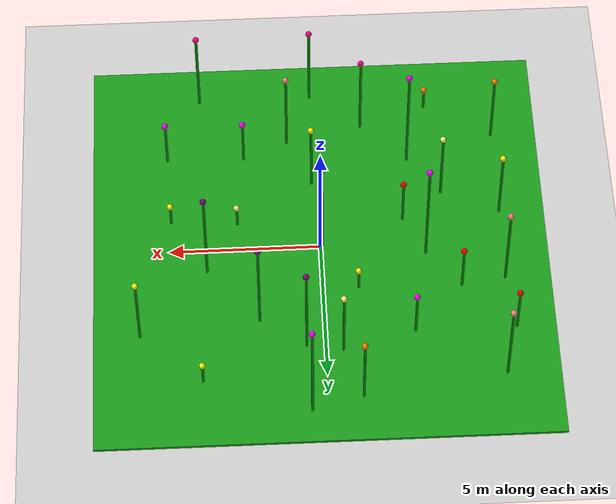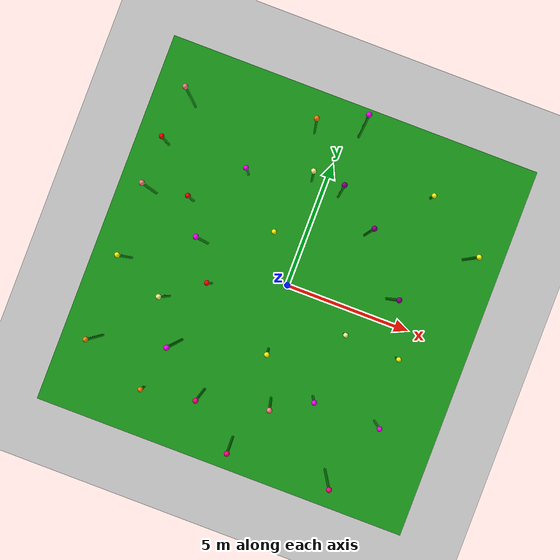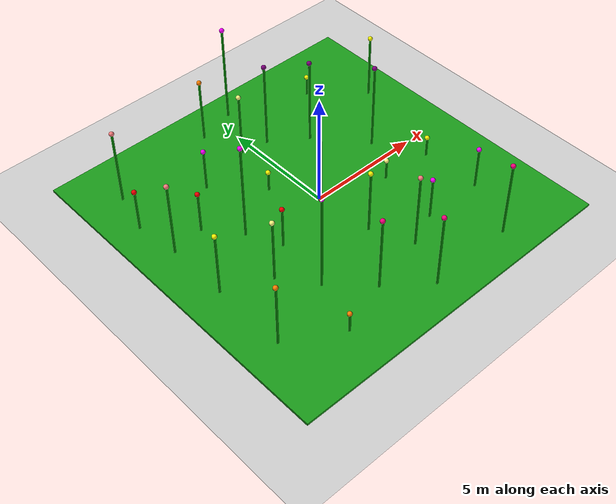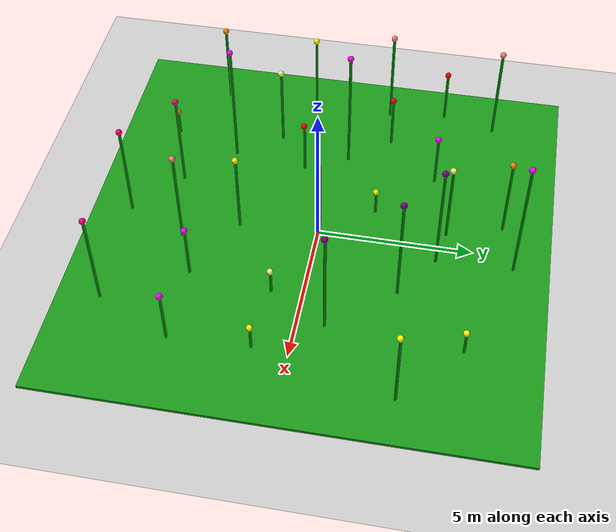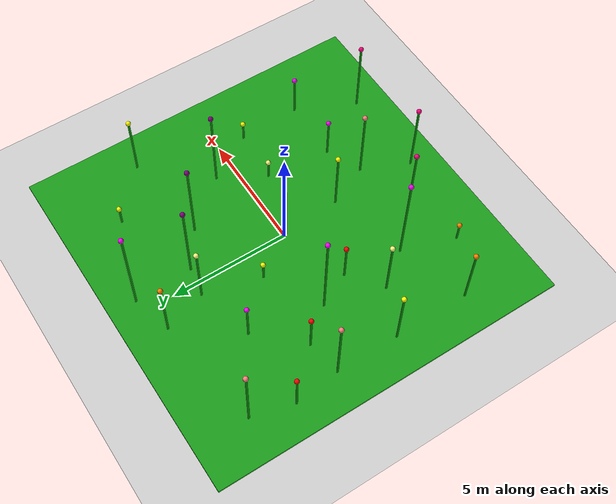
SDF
<sdf version='1.10'>
  <world name='test_world'>
    <physics name='1ms' type='ignored'>
      <max_step_size>0.001</max_step_size>
      <real_time_factor>1</real_time_factor>
      <real_time_update_rate>1000</real_time_update_rate>
    </physics>
    <plugin name='gz::sim::systems::Physics' filename='gz-sim-physics-system'/>
    <plugin name='gz::sim::systems::UserCommands' filename='gz-sim-user-commands-system'/>
    <plugin name='gz::sim::systems::SceneBroadcaster' filename='gz-sim-scene-broadcaster-system'/>
    <plugin name='gz::sim::systems::Contact' filename='gz-sim-contact-system'/>
    <gravity>0 0 -9.8</gravity>
    <magnetic_field>5.5645e-06 2.28758e-05 -4.23884e-05</magnetic_field>
    <atmosphere type='adiabatic'/>
    <scene>
      <ambient>0.4 0.4 0.4 1</ambient>
      <background>0.7 0.7 0.7 1</background>
      <shadows>true</shadows>
    </scene>

    <!-- Ground Plane -->
    <model name='ground_plane'>
      <static>true</static>
      <link name='link'>
        <collision name='collision'>
          <geometry>
            <plane>
              <normal>0 0 1</normal>
              <size>100 100</size>
            </plane>
          </geometry>
          <surface>
            <friction><ode/></friction>
          </surface>
        </collision>
        <visual name='visual'>
          <geometry>
            <plane>
              <normal>0 0 1</normal>
              <size>100 100</size>
            </plane>
          </geometry>
          <material>
            <ambient>0.8 0.8 0.8 1</ambient>
            <diffuse>0.8 0.8 0.8 1</diffuse>
            <specular>0.8 0.8 0.8 1</specular>
          </material>
        </visual>
      </link>
    </model>

    <!-- Grass Patch -->
    <model name="grass_patch">
      <static>true</static>
      <link name="link">
        <visual name="grass_visual">
          <geometry>
            <box>
              <size>15 15 0.1</size>
            </box>
          </geometry>
          <material>
            <ambient>0.1 0.6 0.1 1</ambient>
            <diffuse>0.1 0.6 0.1 1</diffuse>
          </material>
          <pose>0 0 0.05 0 0 0</pose>
        </visual>
        <collision name="grass_collision">
          <geometry>
            <box>
              <size>15 15 0.1</size>
            </box>
          </geometry>
        </collision>
      </link>
    </model>

    <!-- 30 Random Flowers -->

    <model name="flower1">
      <static>true</static>
      <link name="link">
        <visual name="stem_visual"><geometry><cylinder><radius>0.05</radius><length>2.0</length></cylinder></geometry><material><ambient>0 0.5 0 1</ambient><diffuse>0 0.5 0 1</diffuse></material><pose>0 0 1.0 0 0 0</pose></visual>
        <visual name="top_visual"><geometry><sphere><radius>0.1</radius></sphere></geometry><material><ambient>1 0 0 1</ambient><diffuse>1 0 0 1</diffuse></material><pose>0 0 2.0 0 0 0</pose></visual>
      </link>
      <pose>-6.21 3.47 0 0 0 0</pose>
    </model>

    <model name="flower2">
      <static>true</static>
      <link name="link">
        <visual name="stem_visual"><geometry><cylinder><radius>0.05</radius><length>1.0</length></cylinder></geometry><material><ambient>0 0.5 0 1</ambient><diffuse>0 0.5 0 1</diffuse></material><pose>0 0 0.5 0 0 0</pose></visual>
        <visual name="top_visual"><geometry><sphere><radius>0.1</radius></sphere></geometry><material><ambient>1 1 0 1</ambient><diffuse>1 1 0 1</diffuse></material><pose>0 0 1.0 0 0 0</pose></visual>
      </link>
      <pose>4.9199999999999999 -1.1299999999999999 0 0 0 0</pose>
    </model>

    <model name="flower3">
      <static>true</static>
      <link name="link">
        <visual name="stem_visual"><geometry><cylinder><radius>0.05</radius><length>4.5</length></cylinder></geometry><material><ambient>0 0.5 0 1</ambient><diffuse>0 0.5 0 1</diffuse></material><pose>0 0 2.25 0 0 0</pose></visual>
        <visual name="top_visual"><geometry><sphere><radius>0.1</radius></sphere></geometry><material><ambient>1 0 1 1</ambient><diffuse>1 0 1 1</diffuse></material><pose>0 0 4.5 0 0 0</pose></visual>
      </link>
      <pose>0.55000000000000004 6.3399999999999999 0 0 0 0</pose>
    </model>

    <model name="flower4">
      <static>true</static>
      <link name="link">
        <visual name="stem_visual"><geometry><cylinder><radius>0.05</radius><length>1.0</length></cylinder></geometry><material><ambient>0 0.5 0 1</ambient><diffuse>0 0.5 0 1</diffuse></material><pose>0 0 0.5 0 0 0</pose></visual>
        <visual name="top_visual"><geometry><sphere><radius>0.1</radius></sphere></geometry><material><ambient>1 0.5 0 1</ambient><diffuse>1 0.5 0 1</diffuse></material><pose>0 0 1.0 0 0 0</pose></visual>
      </link>
      <pose>-3.78 -5.62 0 0 0 0</pose>
    </model>

    <model name="flower5">
      <static>true</static>
      <link name="link">
        <visual name="stem_visual"><geometry><cylinder><radius>0.05</radius><length>4.0</length></cylinder></geometry><material><ambient>0 0.5 0 1</ambient><diffuse>0 0.5 0 1</diffuse></material><pose>0 0 2.0 0 0 0</pose></visual>
        <visual name="top_visual"><geometry><sphere><radius>0.1</radius></sphere></geometry><material><ambient>0.5 0 0.5 1</ambient><diffuse>0.5 0 0.5 1</diffuse></material><pose>0 0 4.0 0 0 0</pose></visual>
      </link>
      <pose>2.11 2.87 0 0 0 0</pose>
    </model>

    <model name="flower6">
      <static>true</static>
      <link name="link">
        <visual name="stem_visual"><geometry><cylinder><radius>0.05</radius><length>1.0</length></cylinder></geometry><material><ambient>0 0.5 0 1</ambient><diffuse>0 0.5 0 1</diffuse></material><pose>0 0 0.5 0 0 0</pose></visual>
        <visual name="top_visual"><geometry><sphere><radius>0.1</radius></sphere></geometry><material><ambient>1 1 0.5 1</ambient><diffuse>1 1 0.5 1</diffuse></material><pose>0 0 1.0 0 0 0</pose></visual>
      </link>
      <pose>2.7268669605255127 -0.98000001907348633 0 0 0 0</pose>
    </model>

    <model name="flower7">
      <static>true</static>
      <link name="link">
        <visual name="stem_visual"><geometry><cylinder><radius>0.05</radius><length>2.0</length></cylinder></geometry><material><ambient>0 0.5 0 1</ambient><diffuse>0 0.5 0 1</diffuse></material><pose>0 0 1.0 0 0 0</pose></visual>
        <visual name="top_visual"><geometry><sphere><radius>0.1</radius></sphere></geometry><material><ambient>1 0 1 1</ambient><diffuse>1 0 1 1</diffuse></material><pose>0 0 2.0 0 0 0</pose></visual>
      </link>
      <pose>5.0106801986694336 -3.7122397422790527 0 0 0 0</pose>
    </model>

    <model name="flower8">
      <static>true</static>
      <link name="link">
        <visual name="stem_visual"><geometry><cylinder><radius>0.05</radius><length>3.5</length></cylinder></geometry><material><ambient>0 0.5 0 1</ambient><diffuse>0 0.5 0 1</diffuse></material><pose>0 0 1.75 0 0 0</pose></visual>
        <visual name="top_visual"><geometry><sphere><radius>0.1</radius></sphere></geometry><material><ambient>1 0.5 0.5 1</ambient><diffuse>1 0.5 0.5 1</diffuse></material><pose>0 0 3.5 0 0 0</pose></visual>
      </link>
      <pose>-5.76 5.21 0 0 0 0</pose>
    </model>

    <model name="flower9">
      <static>true</static>
      <link name="link">
        <visual name="stem_visual"><geometry><cylinder><radius>0.05</radius><length>3.5</length></cylinder></geometry><material><ambient>0 0.5 0 1</ambient><diffuse>0 0.5 0 1</diffuse></material><pose>0 0 1.75 0 0 0</pose></visual>
        <visual name="top_visual"><geometry><sphere><radius>0.1</radius></sphere></geometry><material><ambient>1 0 0.5 1</ambient><diffuse>1 0 0.5 1</diffuse></material><pose>0 0 3.5 0 0 0</pose></visual>
      </link>
      <pose>3.88 -6.14 0 0 0 0</pose>
    </model>

    <model name="flower10">
      <static>true</static>
      <link name="link">
        <visual name="stem_visual"><geometry><cylinder><radius>0.05</radius><length>1.0</length></cylinder></geometry><material><ambient>0 0.5 0 1</ambient><diffuse>0 0.5 0 1</diffuse></material><pose>0 0 0.5 0 0 0</pose></visual>
        <visual name="top_visual"><geometry><sphere><radius>0.1</radius></sphere></geometry><material><ambient>1 1 0 1</ambient><diffuse>1 1 0 1</diffuse></material><pose>0 0 1.0 0 0 0</pose></visual>
      </link>
      <pose>-1.1677910089492798 1.7102899551391602 0 0 0 0</pose>
    </model>

    <model name="flower11">
      <static>true</static>
      <link name="link">
        <visual name="stem_visual"><geometry><cylinder><radius>0.05</radius><length>2.0</length></cylinder></geometry><material><ambient>0 0.5 0 1</ambient><diffuse>0 0.5 0 1</diffuse></material><pose>0 0 1.0 0 0 0</pose></visual>
        <visual name="top_visual"><geometry><sphere><radius>0.1</radius></sphere></geometry><material><ambient>1 0 0 1</ambient><diffuse>1 0 0 1</diffuse></material><pose>0 0 2.0 0 0 0</pose></visual>
      </link>
      <pose>-2.7699999809265137 -0.95477199554443359 0 0 0 0</pose>
    </model>

    <model name="flower12">
      <static>true</static>
      <link name="link">
        <visual name="stem_visual"><geometry><cylinder><radius>0.05</radius><length>3.0</length></cylinder></geometry><material><ambient>0 0.5 0 1</ambient><diffuse>0 0.5 0 1</diffuse></material><pose>0 0 1.5 0 0 0</pose></visual>
        <visual name="top_visual"><geometry><sphere><radius>0.1</radius></sphere></geometry><material><ambient>1 1 0 1</ambient><diffuse>1 1 0 1</diffuse></material><pose>0 0 3.0 0 0 0</pose></visual>
      </link>
      <pose>0.19871200621128082 -2.5511820316314697 0 0 0 0</pose>
    </model>

    <model name="flower13">
      <static>true</static>
      <link name="link">
        <visual name="stem_visual"><geometry><cylinder><radius>0.05</radius><length>4.5</length></cylinder></geometry><material><ambient>0 0.5 0 1</ambient><diffuse>0 0.5 0 1</diffuse></material><pose>0 0 2.25 0 0 0</pose></visual>
        <visual name="top_visual"><geometry><sphere><radius>0.1</radius></sphere></geometry><material><ambient>1 0 1 1</ambient><diffuse>1 0 1 1</diffuse></material><pose>0 0 4.5 0 0 0</pose></visual>
      </link>
      <pose>-3.0538747310638428 -3.3986799716949463 0 0 0 0</pose>
    </model>

    <model name="flower14">
      <static>true</static>
      <link name="link">
        <visual name="stem_visual"><geometry><cylinder><radius>0.05</radius><length>3.0</length></cylinder></geometry><material><ambient>0 0.5 0 1</ambient><diffuse>0 0.5 0 1</diffuse></material><pose>0 0 1.5 0 0 0</pose></visual>
        <visual name="top_visual"><geometry><sphere><radius>0.1</radius></sphere></geometry><material><ambient>1 0.5 0 1</ambient><diffuse>1 0.5 0 1</diffuse></material><pose>0 0 3.0 0 0 0</pose></visual>
      </link>
      <pose>-5.9881601333618164 -4.3124814033508301 0 0 0 0</pose>
    </model>

    <model name="flower15">
      <static>true</static>
      <link name="link">
        <visual name="stem_visual"><geometry><cylinder><radius>0.05</radius><length>4.0</length></cylinder></geometry><material><ambient>0 0.5 0 1</ambient><diffuse>0 0.5 0 1</diffuse></material><pose>0 0 2.0 0 0 0</pose></visual>
        <visual name="top_visual"><geometry><sphere><radius>0.1</radius></sphere></geometry><material><ambient>0.5 0 0.5 1</ambient><diffuse>0.5 0 0.5 1</diffuse></material><pose>0 0 4.0 0 0 0</pose></visual>
      </link>
      <pose>3.77 0.88 0 0 0 0</pose>
    </model>

    <model name="flower16">
      <static>true</static>
      <link name="link">
        <visual name="stem_visual"><geometry><cylinder><radius>0.05</radius><length>3.0</length></cylinder></geometry><material><ambient>0 0.5 0 1</ambient><diffuse>0 0.5 0 1</diffuse></material><pose>0 0 1.5 0 0 0</pose></visual>
        <visual name="top_visual"><geometry><sphere><radius>0.1</radius></sphere></geometry><material><ambient>1 1 0.5 1</ambient><diffuse>1 1 0.5 1</diffuse></material><pose>0 0 3.0 0 0 0</pose></visual>
      </link>
      <pose>-0.55000000000000004 4.1100000000000003 0 0 0 0</pose>
    </model>

    <model name="flower17">
      <static>true</static>
      <link name="link">
        <visual name="stem_visual"><geometry><cylinder><radius>0.05</radius><length>2.0</length></cylinder></geometry><material><ambient>0 0.5 0 1</ambient><diffuse>0 0.5 0 1</diffuse></material><pose>0 0 1.0 0 0 0</pose></visual>
        <visual name="top_visual"><geometry><sphere><radius>0.1</radius></sphere></geometry><material><ambient>1 0 1 1</ambient><diffuse>1 0 1 1</diffuse></material><pose>0 0 2.0 0 0 0</pose></visual>
      </link>
      <pose>2.4399999999999999 -3.6600000000000001 0 0 0 0</pose>
    </model>

    <model name="flower18">
      <static>true</static>
      <link name="link">
        <visual name="stem_visual"><geometry><cylinder><radius>0.05</radius><length>3.5</length></cylinder></geometry><material><ambient>0 0.5 0 1</ambient><diffuse>0 0.5 0 1</diffuse></material><pose>0 0 1.75 0 0 0</pose></visual>
        <visual name="top_visual"><geometry><sphere><radius>0.1</radius></sphere></geometry><material><ambient>1 0.5 0.5 1</ambient><diffuse>1 0.5 0.5 1</diffuse></material><pose>0 0 3.5 0 0 0</pose></visual>
      </link>
      <pose>-5.9900000000000002 1.55 0 0 0 0</pose>
    </model>

    <model name="flower19">
      <static>true</static>
      <link name="link">
        <visual name="stem_visual"><geometry><cylinder><radius>0.05</radius><length>3.5</length></cylinder></geometry><material><ambient>0 0.5 0 1</ambient><diffuse>0 0.5 0 1</diffuse></material><pose>0 0 1.75 0 0 0</pose></visual>
        <visual name="top_visual"><geometry><sphere><radius>0.1</radius></sphere></geometry><material><ambient>1 0 0.5 1</ambient><diffuse>1 0 0.5 1</diffuse></material><pose>0 0 3.5 0 0 0</pose></visual>
      </link>
      <pose>0.11 -6.2199999999999998 0 0 0 0</pose>
    </model>

    <model name="flower20">
      <static>true</static>
      <link name="link">
        <visual name="stem_visual"><geometry><cylinder><radius>0.05</radius><length>3.0</length></cylinder></geometry><material><ambient>0 0.5 0 1</ambient><diffuse>0 0.5 0 1</diffuse></material><pose>0 0 1.5 0 0 0</pose></visual>
        <visual name="top_visual"><geometry><sphere><radius>0.1</radius></sphere></geometry><material><ambient>1 1 0 1</ambient><diffuse>1 1 0 1</diffuse></material><pose>0 0 3.0 0 0 0</pose></visual>
      </link>
      <pose>6 3.3300000000000001 0 0 0 0</pose>
    </model>

    <model name="flower21">
      <static>true</static>
      <link name="link">
        <visual name="stem_visual"><geometry><cylinder><radius>0.05</radius><length>2.0</length></cylinder></geometry><material><ambient>0 0.5 0 1</ambient><diffuse>0 0.5 0 1</diffuse></material><pose>0 0 1.0 0 0 0</pose></visual>
        <visual name="top_visual"><geometry><sphere><radius>0.1</radius></sphere></geometry><material><ambient>1 0 0 1</ambient><diffuse>1 0 0 1</diffuse></material><pose>0 0 2.0 0 0 0</pose></visual>
      </link>
      <pose>-4.5499999999999998 1.78 0 0 0 0</pose>
    </model>

    <model name="flower22">
      <static>true</static>
      <link name="link">
        <visual name="stem_visual"><geometry><cylinder><radius>0.05</radius><length>3.0</length></cylinder></geometry><material><ambient>0 0.5 0 1</ambient><diffuse>0 0.5 0 1</diffuse></material><pose>0 0 1.5 0 0 0</pose></visual>
        <visual name="top_visual"><geometry><sphere><radius>0.1</radius></sphere></geometry><material><ambient>1 1 0 1</ambient><diffuse>1 1 0 1</diffuse></material><pose>0 0 3.0 0 0 0</pose></visual>
      </link>
      <pose>-6 -1.1200000000000001 0 0 0 0</pose>
    </model>

    <model name="flower23">
      <static>true</static>
      <link name="link">
        <visual name="stem_visual"><geometry><cylinder><radius>0.05</radius><length>4.5</length></cylinder></geometry><material><ambient>0 0.5 0 1</ambient><diffuse>0 0.5 0 1</diffuse></material><pose>0 0 2.25 0 0 0</pose></visual>
        <visual name="top_visual"><geometry><sphere><radius>0.1</radius></sphere></geometry><material><ambient>1 0 1 1</ambient><diffuse>1 0 1 1</diffuse></material><pose>0 0 4.5 0 0 0</pose></visual>
      </link>
      <pose>-3.4500000000000002 0.44 0 0 0 0</pose>
    </model>

    <model name="flower24">
      <static>true</static>
      <link name="link">
        <visual name="stem_visual"><geometry><cylinder><radius>0.05</radius><length>3.0</length></cylinder></geometry><material><ambient>0 0.5 0 1</ambient><diffuse>0 0.5 0 1</diffuse></material><pose>0 0 1.5 0 0 0</pose></visual>
        <visual name="top_visual"><geometry><sphere><radius>0.1</radius></sphere></geometry><material><ambient>1 0.5 0 1</ambient><diffuse>1 0.5 0 1</diffuse></material><pose>0 0 3.0 0 0 0</pose></visual>
      </link>
      <pose>-1.1100000000000001 5.8899999999999997 0 0 0 0</pose>
    </model>

    <model name="flower25">
      <static>true</static>
      <link name="link">
        <visual name="stem_visual"><geometry><cylinder><radius>0.05</radius><length>4.0</length></cylinder></geometry><material><ambient>0 0.5 0 1</ambient><diffuse>0 0.5 0 1</diffuse></material><pose>0 0 2.0 0 0 0</pose></visual>
        <visual name="top_visual"><geometry><sphere><radius>0.1</radius></sphere></geometry><material><ambient>0.5 0 0.5 1</ambient><diffuse>0.5 0 0.5 1</diffuse></material><pose>0 0 4.0 0 0 0</pose></visual>
      </link>
      <pose>0.62909823656082153 3.9000000953674316 0 0 0 0</pose>
    </model>

    <model name="flower26">
      <static>true</static>
      <link name="link">
        <visual name="stem_visual"><geometry><cylinder><radius>0.05</radius><length>3.0</length></cylinder></geometry><material><ambient>0 0.5 0 1</ambient><diffuse>0 0.5 0 1</diffuse></material><pose>0 0 1.5 0 0 0</pose></visual>
        <visual name="top_visual"><geometry><sphere><radius>0.1</radius></sphere></geometry><material><ambient>1 1 0.5 1</ambient><diffuse>1 1 0.5 1</diffuse></material><pose>0 0 3.0 0 0 0</pose></visual>
      </link>
      <pose>-4.1100001335144043 -1.9841194152832031 0 0 0 0</pose>
    </model>

    <model name="flower27">
      <static>true</static>
      <link name="link">
        <visual name="stem_visual"><geometry><cylinder><radius>0.05</radius><length>2.0</length></cylinder></geometry><material><ambient>0 0.5 0 1</ambient><diffuse>0 0.5 0 1</diffuse></material><pose>0 0 1.0 0 0 0</pose></visual>
        <visual name="top_visual"><geometry><sphere><radius>0.1</radius></sphere></geometry><material><ambient>1 0 1 1</ambient><diffuse>1 0 1 1</diffuse></material><pose>0 0 2.0 0 0 0</pose></visual>
      </link>
      <pose>-2.9213600158691406 3.4792418479919434 0 0 0 0</pose>
    </model>

    <model name="flower28">
      <static>true</static>
      <link name="link">
        <visual name="stem_visual"><geometry><cylinder><radius>0.05</radius><length>3.5</length></cylinder></geometry><material><ambient>0 0.5 0 1</ambient><diffuse>0 0.5 0 1</diffuse></material><pose>0 0 1.75 0 0 0</pose></visual>
        <visual name="top_visual"><geometry><sphere><radius>0.1</radius></sphere></geometry><material><ambient>1 0.5 0.5 1</ambient><diffuse>1 0.5 0.5 1</diffuse></material><pose>0 0 3.5 0 0 0</pose></visual>
      </link>
      <pose>0.96102756261825562 -4.2900199890136719 0 0 0 0</pose>
    </model>

    <model name="flower29">
      <static>true</static>
      <link name="link">
        <visual name="stem_visual"><geometry><cylinder><radius>0.05</radius><length>3.5</length></cylinder></geometry><material><ambient>0 0.5 0 1</ambient><diffuse>0 0.5 0 1</diffuse></material><pose>0 0 1.75 0 0 0</pose></visual>
        <visual name="top_visual"><geometry><sphere><radius>0.1</radius></sphere></geometry><material><ambient>1 0 0.5 1</ambient><diffuse>1 0 0.5 1</diffuse></material><pose>0 0 3.5 0 0 0</pose></visual>
      </link>
      <pose>-1.5600000000000001 -4.8799999999999999 0 0 0 0</pose>
    </model>

    <model name="flower30">
      <static>true</static>
      <link name="link">
        <visual name="stem_visual"><geometry><cylinder><radius>0.05</radius><length>1.0</length></cylinder></geometry><material><ambient>0 0.5 0 1</ambient><diffuse>0 0.5 0 1</diffuse></material><pose>0 0 0.5 0 0 0</pose></visual>
        <visual name="top_visual"><geometry><sphere><radius>0.1</radius></sphere></geometry><material><ambient>1 1 0 1</ambient><diffuse>1 1 0 1</diffuse></material><pose>0 0 1.0 0 0 0</pose></visual>
      </link>
      <pose>3.9900000000000002 5.1100000000000003 0 0 0 0</pose>
    </model>

    <!-- Pole for Camera and LiDAR -->
    <model name="pole">
      <static>true</static>
      <link name="link">
        <visual name="pole_visual">
          <geometry>
            <cylinder>
              <radius>0.1</radius>
              <length>3</length>
            </cylinder>
          </geometry>
          <material>
            <ambient>0.3 0.3 0.3 1</ambient>
            <diffuse>0.5 0.5 0.5 1</diffuse>
          </material>
          <pose>0 0 1.5 0 0 0</pose>
        </visual>
        <collision name="pole_collision">
          <geometry>
            <cylinder>
              <radius>0.1</radius>
              <length>3</length>
            </cylinder>
          </geometry>
        </collision>

        <!-- LiDAR Sensor -->
        <sensor name="lidar" type="gpu_ray">
        <pose>0 0 1.5 0 0 0</pose>
        <ray>
          <scan>
            <horizontal>
              <samples>720</samples>
              <resolution>1</resolution>
              <min_angle>-1.5708</min_angle>
              <max_angle>1.5708</max_angle>
            </horizontal>
            <vertical>
              <samples>1</samples>
              <resolution>1</resolution>
              <min_angle>0</min_angle>
              <max_angle>0</max_angle>
            </vertical>
          </scan>
          <range>
            <min>0.1</min>
            <max>10.0</max>
            <resolution>0.01</resolution>
          </range>
          <noise>
            <type>gaussian</type>
            <mean>0.0</mean>
            <stddev>0.01</stddev>
          </noise>
        </ray>
      </sensor>

      </link>
      <pose>0 0 0 0 0 0</pose>
    </model>

    <!-- Directional Light -->
    <light name='sun' type='directional'>
      <pose>0 0 10 0 0 0</pose>
      <cast_shadows>true</cast_shadows>
      <intensity>1</intensity>
      <direction>-0.5 0.1 -0.9</direction>
      <diffuse>0.8 0.8 0.8 1</diffuse>
      <specular>0.2 0.2 0.2 1</specular>
      <attenuation>
        <range>1000</range>
        <linear>0.01</linear>
        <constant>0.9</constant>
        <quadratic>0.001</quadratic>
      </attenuation>
    </light>

  </world>
</sdf>
